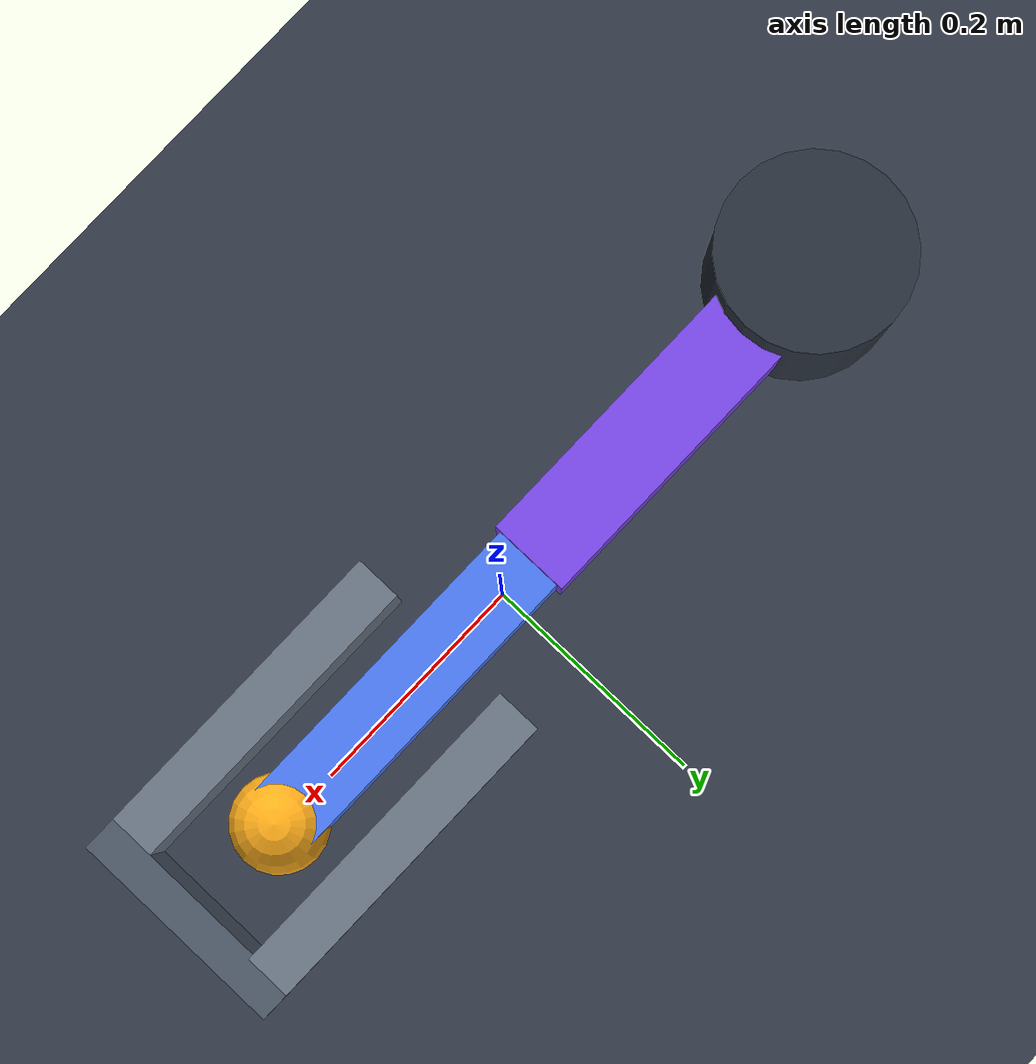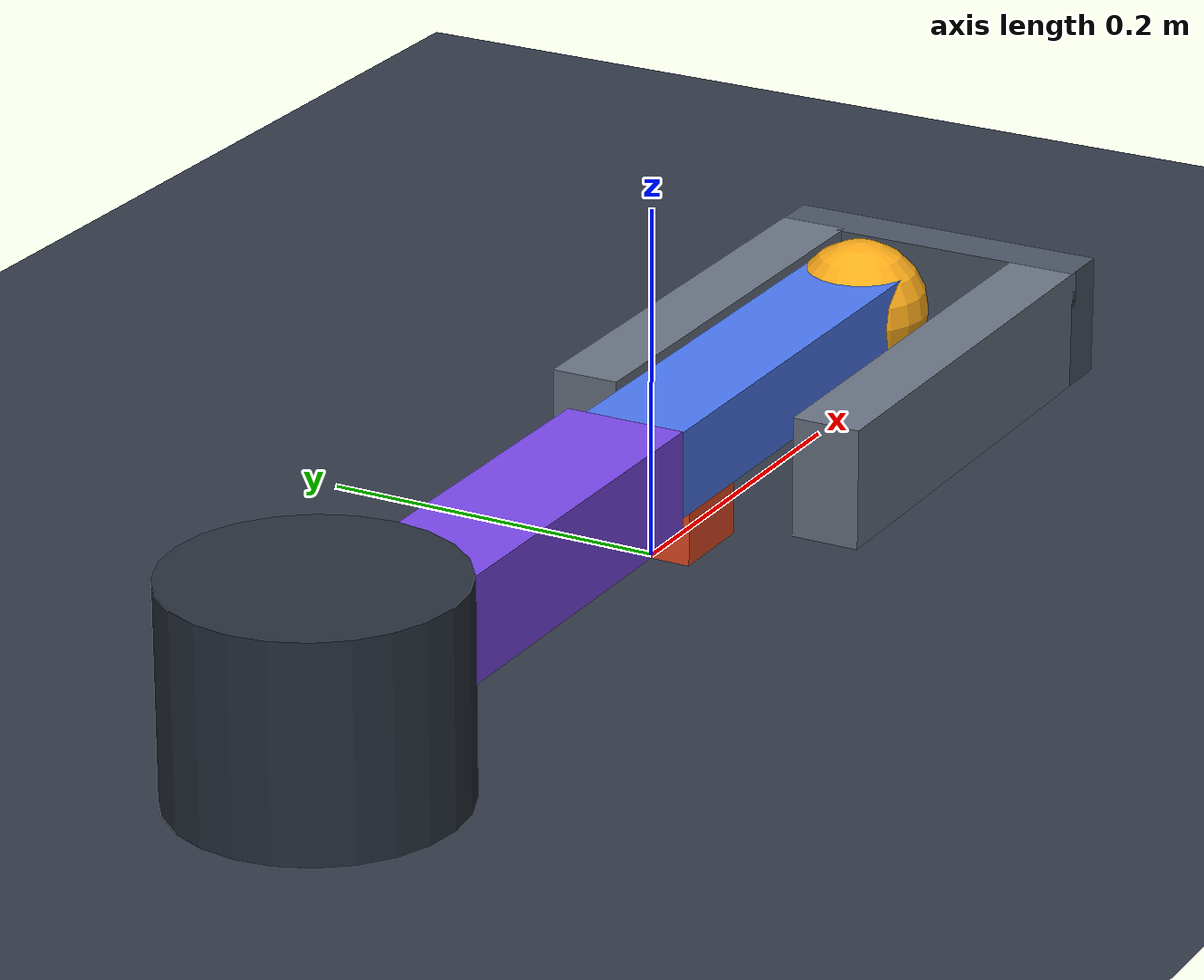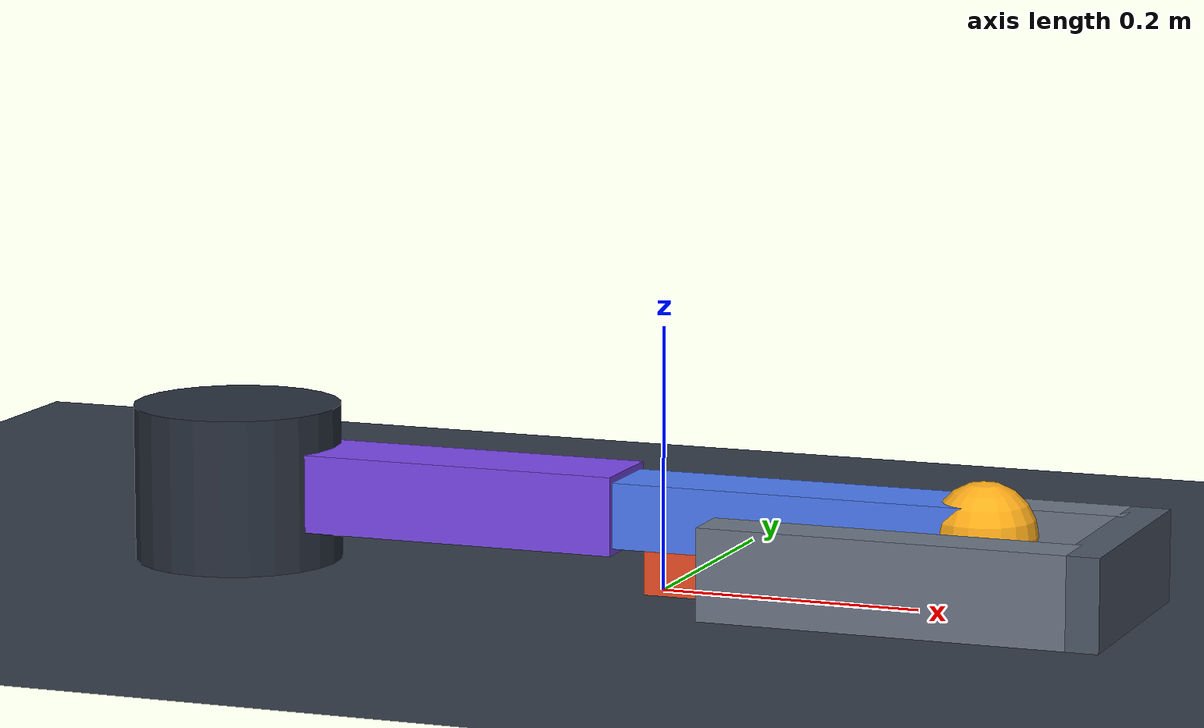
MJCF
<mujoco model="precision_insert">
  <compiler angle="radian" autolimits="true"/>
  <option timestep="0.005" gravity="0 0 -9.81" integrator="implicitfast" solver="Newton" iterations="24" cone="pyramidal"/>
  <size njmax="160" nconmax="48"/>

  <default>
    <joint damping="1.2" armature="0.02" limited="true"/>
    <geom friction="1.0 0.02 0.0001" condim="3" contype="1" conaffinity="1"/>
    <motor ctrllimited="true" ctrlrange="-8 8"/>
  </default>

  <worldbody>
    <light name="key" pos="0 0 2" dir="0 0 -1"/>
    <geom name="assembly_table" type="plane" size="1.2 0.8 0.05" rgba="0.20 0.23 0.28 1" friction="1.1 0.02 0.001"/>
    <geom name="guide_upper" type="box" pos="0.20 0.075 0.035" size="0.14 0.020 0.035" rgba="0.42 0.46 0.52 1" contype="2" conaffinity="2"/>
    <geom name="guide_lower" type="box" pos="0.20 -0.075 0.035" size="0.14 0.020 0.035" rgba="0.42 0.46 0.52 1" contype="2" conaffinity="2"/>
    <geom name="assembly_backstop" type="box" pos="0.35 0 0.035" size="0.015 0.095 0.035" rgba="0.30 0.34 0.40 1" contype="2" conaffinity="2"/>

    <body name="base" pos="-0.35 0 0.06">
      <geom name="base_geom" type="cylinder" size="0.08 0.06" rgba="0.16 0.19 0.24 1" contype="0" conaffinity="0"/>
      <body name="link1" pos="0 0 0">
        <joint name="shoulder" type="hinge" axis="0 0 1" range="-2.7 2.7"/>
        <geom name="link1_geom" type="box" pos="0.16 0 0" size="0.16 0.035 0.03" rgba="0.48 0.28 0.92 1"/>
        <body name="link2" pos="0.32 0 0">
          <joint name="elbow" type="hinge" axis="0 0 1" range="-2.8 2.8"/>
          <geom name="link2_geom" type="box" pos="0.14 0 0" size="0.14 0.03 0.025" rgba="0.30 0.48 0.96 1"/>
          <body name="pusher" pos="0.28 0 0">
            <geom name="pusher_geom" type="sphere" size="0.040" rgba="1.0 0.68 0.10 1" friction="1.2 0.02 0.001"/>
          </body>
        </body>
      </body>
    </body>

    <body name="workpiece" pos="0.02 0 0.031">
      <freejoint name="workpiece_free"/>
      <geom name="workpiece_geom" type="box" size="0.026 0.026 0.030" density="720" rgba="0.92 0.30 0.14 1" friction="0.9 0.02 0.001" contype="3" conaffinity="3"/>
    </body>
  </worldbody>

  <actuator>
    <motor name="shoulder_motor" joint="shoulder" gear="1"/>
    <motor name="elbow_motor" joint="elbow" gear="1"/>
  </actuator>
</mujoco>
